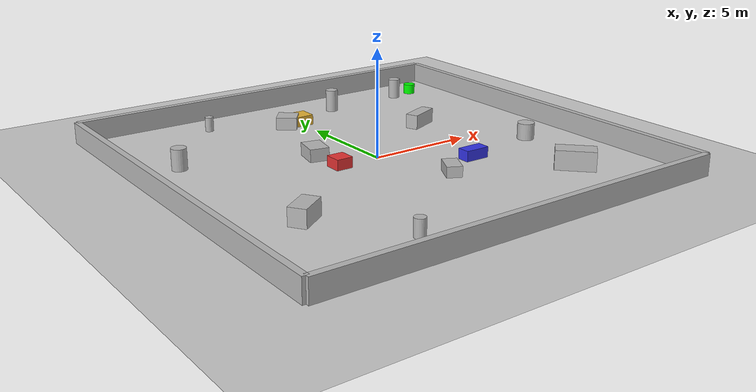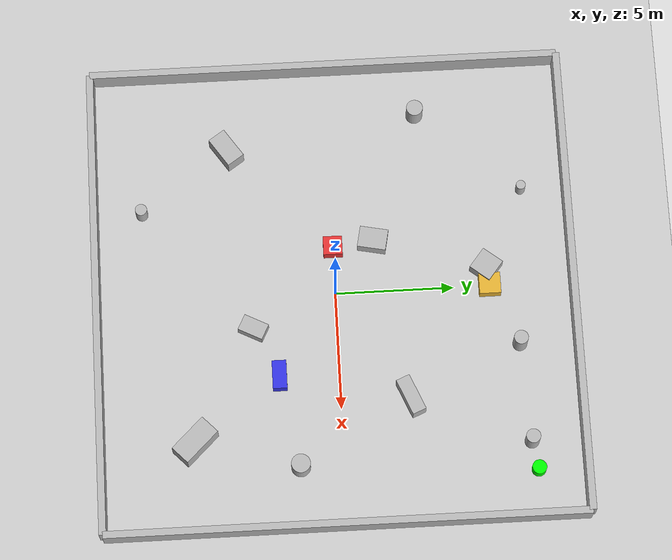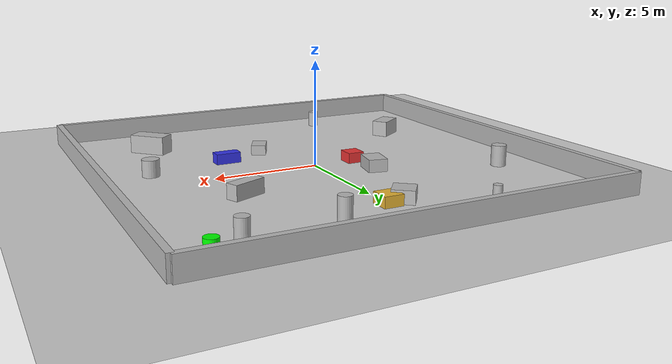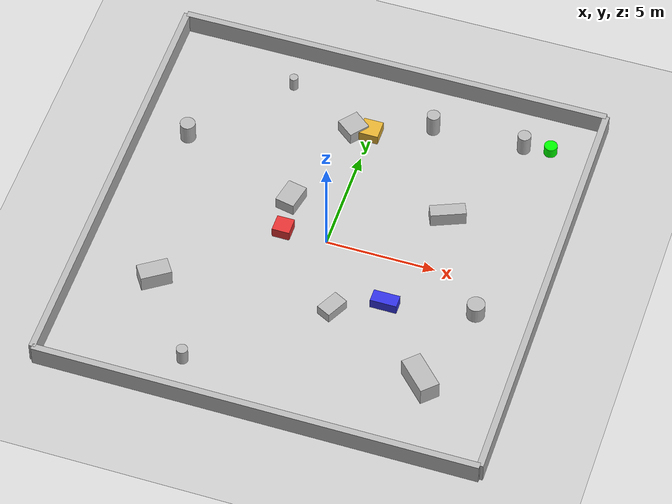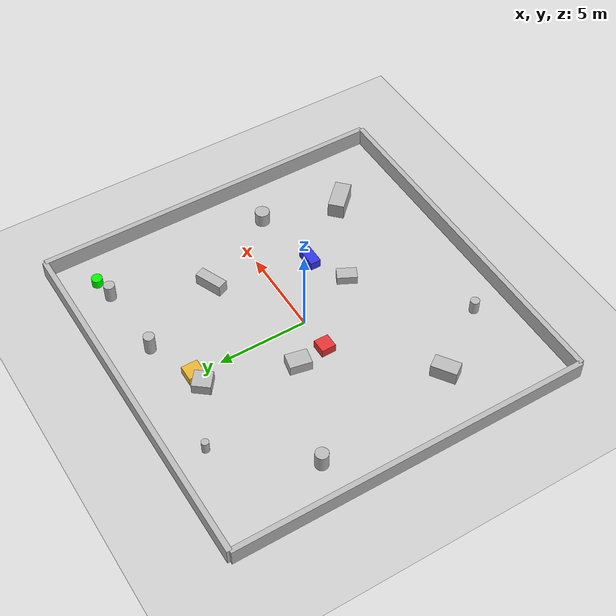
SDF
<sdf version='1.10'>
  <world name='empty'>
    <physics name='1ms' type='ignored'>
      <max_step_size>0.001</max_step_size>
      <real_time_factor>1</real_time_factor>
      <real_time_update_rate>1000</real_time_update_rate>
    </physics>

    <plugin name='gz::sim::systems::Physics' filename='gz-sim-physics-system'/>
    <plugin name='gz::sim::systems::UserCommands' filename='gz-sim-user-commands-system'/>
    <plugin name='gz::sim::systems::SceneBroadcaster' filename='gz-sim-scene-broadcaster-system'/>
    <plugin name='gz::sim::systems::Contact' filename='gz-sim-contact-system'/>
    <plugin name='gz::sim::systems::Sensors' filename='gz-sim-sensors-system'>
      <render_engine>ogre2</render_engine>
    </plugin>

    <gravity>0 0 -9.8</gravity>

    <scene>
      <ambient>0.4 0.4 0.4 1</ambient>
      <background>0.7 0.7 0.7 1</background>
      <shadows>true</shadows>
    </scene>

    <!-- Ground plane -->
    <model name='ground_plane'>
      <static>true</static>
      <pose>0 0 0 0 0 0</pose>
      <link name='link'>
        <collision name='collision'>
          <geometry>
            <plane>
              <normal>0 0 1</normal>
              <size>30 30</size>
            </plane>
          </geometry>
          <surface><friction><ode/></friction></surface>
        </collision>
        <visual name='visual'>
          <geometry>
            <plane>
              <normal>0 0 1</normal>
              <size>30 30</size>
            </plane>
          </geometry>
          <material>
            <ambient>0.8 0.8 0.8 1</ambient>
            <diffuse>0.8 0.8 0.8 1</diffuse>
          </material>
        </visual>
      </link>
    </model>

    <!-- Boundary walls -->
    <model name='wall_north'>
      <static>true</static>
      <pose>0 10 0.5 0 0 0</pose>
      <link name='link'>
        <collision name='col'><geometry><box><size>20 0.3 1.0</size></box></geometry></collision>
        <visual name='vis'><geometry><box><size>20 0.3 1.0</size></box></geometry></visual>
      </link>
    </model>

    <model name='wall_south'>
      <static>true</static>
      <pose>0 -10 0.5 0 0 0</pose>
      <link name='link'>
        <collision name='col'><geometry><box><size>20 0.3 1.0</size></box></geometry></collision>
        <visual name='vis'><geometry><box><size>20 0.3 1.0</size></box></geometry></visual>
      </link>
    </model>

    <model name='wall_west'>
      <static>true</static>
      <pose>-10 0 0.5 0 0 0</pose>
      <link name='link'>
        <collision name='col'><geometry><box><size>0.3 20 1.0</size></box></geometry></collision>
        <visual name='vis'><geometry><box><size>0.3 20 1.0</size></box></geometry></visual>
      </link>
    </model>

    <model name='wall_east'>
      <static>true</static>
      <pose>10 0 0.5 0 0 0</pose>
      <link name='link'>
        <collision name='col'><geometry><box><size>0.3 20 1.0</size></box></geometry></collision>
        <visual name='vis'><geometry><box><size>0.3 20 1.0</size></box></geometry></visual>
      </link>
    </model>

    <!-- Static box obstacles -->
    <model name='box_00'>
      <static>true</static>
      <pose>-6.5 -4.3 0.4 0 0 0.6</pose>
      <link name='link'>
        <collision name='col'><geometry><box><size>1.4 0.8 0.8</size></box></geometry></collision>
        <visual name='vis'><geometry><box><size>1.4 0.8 0.8</size></box></geometry></visual>
      </link>
    </model>

    <model name='box_01'>
      <static>true</static>
      <pose>-2.2 1.7 0.3 0 0 -0.2</pose>
      <link name='link'>
        <collision name='col'><geometry><box><size>0.9 1.2 0.6</size></box></geometry></collision>
        <visual name='vis'><geometry><box><size>0.9 1.2 0.6</size></box></geometry></visual>
      </link>
    </model>

    <model name='box_02'>
      <static>true</static>
      <pose>1.4 -3.5 0.25 0 0 1.1</pose>
      <link name='link'>
        <collision name='col'><geometry><box><size>1.1 0.7 0.5</size></box></geometry></collision>
        <visual name='vis'><geometry><box><size>1.1 0.7 0.5</size></box></geometry></visual>
      </link>
    </model>

    <model name='box_03'>
      <static>true</static>
      <pose>4.7 2.9 0.35 0 0 0.4</pose>
      <link name='link'>
        <collision name='col'><geometry><box><size>1.6 0.6 0.7</size></box></geometry></collision>
        <visual name='vis'><geometry><box><size>1.6 0.6 0.7</size></box></geometry></visual>
      </link>
    </model>

    <model name='box_04'>
      <static>true</static>
      <pose>6.2 -6.1 0.45 0 0 -0.8</pose>
      <link name='link'>
        <collision name='col'><geometry><box><size>1.8 0.9 0.9</size></box></geometry></collision>
        <visual name='vis'><geometry><box><size>1.8 0.9 0.9</size></box></geometry></visual>
      </link>
    </model>

    <model name='box_05'>
      <static>true</static>
      <pose>-0.8 6.4 0.3 0 0 0.9</pose>
      <link name='link'>
        <collision name='col'><geometry><box><size>1.0 1.0 0.6</size></box></geometry></collision>
        <visual name='vis'><geometry><box><size>1.0 1.0 0.6</size></box></geometry></visual>
      </link>
    </model>

    <!-- Static cylindrical obstacles -->
    <model name='cyl_00'>
      <static>true</static>
      <pose>-7.8 3.8 0.5 0 0 0</pose>
      <link name='link'>
        <collision name='col'><geometry><cylinder><radius>0.35</radius><length>1.0</length></cylinder></geometry></collision>
        <visual name='vis'><geometry><cylinder><radius>0.35</radius><length>1.0</length></cylinder></geometry></visual>
      </link>
    </model>

    <model name='cyl_01'>
      <static>true</static>
      <pose>-3.9 -8.0 0.4 0 0 0</pose>
      <link name='link'>
        <collision name='col'><geometry><cylinder><radius>0.25</radius><length>0.8</length></cylinder></geometry></collision>
        <visual name='vis'><geometry><cylinder><radius>0.25</radius><length>0.8</length></cylinder></geometry></visual>
      </link>
    </model>

    <model name='cyl_02'>
      <static>true</static>
      <pose>2.6 7.6 0.55 0 0 0</pose>
      <link name='link'>
        <collision name='col'><geometry><cylinder><radius>0.30</radius><length>1.1</length></cylinder></geometry></collision>
        <visual name='vis'><geometry><cylinder><radius>0.30</radius><length>1.1</length></cylinder></geometry></visual>
      </link>
    </model>

    <model name='cyl_03'>
      <static>true</static>
      <pose>7.4 -1.8 0.4 0 0 0</pose>
      <link name='link'>
        <collision name='col'><geometry><cylinder><radius>0.40</radius><length>0.8</length></cylinder></geometry></collision>
        <visual name='vis'><geometry><cylinder><radius>0.40</radius><length>0.8</length></cylinder></geometry></visual>
      </link>
    </model>

    <model name='cyl_04'>
      <static>true</static>
      <pose>6.8 7.8 0.5 0 0 0</pose>
      <link name='link'>
        <collision name='col'><geometry><cylinder><radius>0.30</radius><length>1.0</length></cylinder></geometry></collision>
        <visual name='vis'><geometry><cylinder><radius>0.30</radius><length>1.0</length></cylinder></geometry></visual>
      </link>
    </model>

    <model name='cyl_05'>
      <static>true</static>
      <pose>-4.2 8.1 0.35 0 0 0</pose>
      <link name='link'>
        <collision name='col'><geometry><cylinder><radius>0.20</radius><length>0.7</length></cylinder></geometry></collision>
        <visual name='vis'><geometry><cylinder><radius>0.20</radius><length>0.7</length></cylinder></geometry></visual>
      </link>
    </model>

    <!-- TARGET (GOAL) MARKER -->
    <model name='goal_marker'>
      <static>true</static>
      <pose>8.0 8.0 0.25 0 0 0</pose>
      <link name='link'>
        <collision name='col'>
          <geometry>
            <cylinder>
              <radius>0.30</radius>
              <length>0.50</length>
            </cylinder>
          </geometry>
        </collision>
        <visual name='vis'>
          <geometry>
            <cylinder>
              <radius>0.30</radius>
              <length>0.50</length>
            </cylinder>
          </geometry>
          <material>
            <ambient>0.0 0.8 0.0 1</ambient>
            <diffuse>0.0 1.0 0.0 1</diffuse>
            <specular>0.1 0.1 0.1 1</specular>
          </material>
        </visual>
      </link>
    </model>

    <!-- DYNAMIC OBSTACLES (MOVING BOXES) -->
    <!-- Dynamic box 1: slides along +X / -X -->
    <model name='dyn_box_01'>
      <static>false</static>
      <pose>-2.0 0.0 0.25 0 0 0</pose>

      <link name='base_link'>
        <collision name='col'><geometry><box><size>0.8 0.8 0.5</size></box></geometry></collision>
        <visual name='vis'>
          <geometry><box><size>0.8 0.8 0.5</size></box></geometry>
          <material>
            <ambient>0.8 0.2 0.2 1</ambient>
            <diffuse>0.9 0.2 0.2 1</diffuse>
          </material>
        </visual>
        <inertial>
          <mass>5.0</mass>
          <inertia>
            <ixx>0.10</ixx><iyy>0.10</iyy><izz>0.10</izz>
            <ixy>0</ixy><ixz>0</ixz><iyz>0</iyz>
          </inertia>
        </inertial>
      </link>

      <!-- ANCHORED prismatic joint to world (no floating slider_link) -->
      <joint name='slider_joint' type='prismatic'>
        <parent>world</parent>
        <child>base_link</child>
        <axis>
          <xyz>1 0 0</xyz>
          <limit>
            <lower>-3.0</lower>
            <upper>3.0</upper>
            <effort>500</effort>
          </limit>
        </axis>
      </joint>

      <plugin name="gz::sim::systems::JointPositionController"
              filename="gz-sim-joint-position-controller-system">
        <joint_name>slider_joint</joint_name>
        <topic>/model/dyn_box_01/joint/slider_joint/cmd_pos</topic>
      </plugin>
    </model>

    <!-- Dynamic box 2: slides along +Y / -Y -->
    <model name='dyn_box_02'>
      <static>false</static>
      <pose>3.5 -2.5 0.25 0 0 0</pose>

      <link name='base_link'>
        <collision name='col'><geometry><box><size>1.2 0.6 0.5</size></box></geometry></collision>
        <visual name='vis'>
          <geometry><box><size>1.2 0.6 0.5</size></box></geometry>
          <material>
            <ambient>0.2 0.2 0.8 1</ambient>
            <diffuse>0.2 0.2 0.9 1</diffuse>
          </material>
        </visual>
        <inertial>
          <mass>6.0</mass>
          <inertia>
            <ixx>0.12</ixx><iyy>0.08</iyy><izz>0.12</izz>
            <ixy>0</ixy><ixz>0</ixz><iyz>0</iyz>
          </inertia>
        </inertial>
      </link>

      <joint name='slider_joint' type='prismatic'>
        <parent>world</parent>
        <child>base_link</child>
        <axis>
          <xyz>0 1 0</xyz>
          <limit>
            <lower>-2.5</lower>
            <upper>2.5</upper>
            <effort>500</effort>
          </limit>
        </axis>
      </joint>

      <plugin name="gz::sim::systems::JointPositionController"
              filename="gz-sim-joint-position-controller-system">
        <joint_name>slider_joint</joint_name>
        <topic>/model/dyn_box_02/joint/slider_joint/cmd_pos</topic>
      </plugin>
    </model>

    <!-- Dynamic box 3: slides along +X / -X in the upper area -->
    <model name='dyn_box_03'>
      <static>false</static>
      <pose>0.0 6.5 0.25 0 0 0</pose>

      <link name='base_link'>
        <collision name='col'><geometry><box><size>0.9 0.9 0.5</size></box></geometry></collision>
        <visual name='vis'>
          <geometry><box><size>0.9 0.9 0.5</size></box></geometry>
          <material>
            <ambient>0.8 0.6 0.2 1</ambient>
            <diffuse>0.9 0.7 0.2 1</diffuse>
          </material>
        </visual>
        <inertial>
          <mass>5.5</mass>
          <inertia>
            <ixx>0.10</ixx><iyy>0.10</iyy><izz>0.10</izz>
            <ixy>0</ixy><ixz>0</ixz><iyz>0</iyz>
          </inertia>
        </inertial>
      </link>

      <joint name='slider_joint' type='prismatic'>
        <parent>world</parent>
        <child>base_link</child>
        <axis>
          <xyz>1 0 0</xyz>
          <limit>
            <lower>-4.0</lower>
            <upper>4.0</upper>
            <effort>500</effort>
          </limit>
        </axis>
      </joint>

      <plugin name="gz::sim::systems::JointPositionController"
              filename="gz-sim-joint-position-controller-system">
        <joint_name>slider_joint</joint_name>
        <topic>/model/dyn_box_03/joint/slider_joint/cmd_pos</topic>
      </plugin>
    </model>

    <!-- Sun light -->
    <light name='sun' type='directional'>
      <pose>0 0 10 0 0 0</pose>
      <cast_shadows>true</cast_shadows>
      <intensity>1</intensity>
      <direction>-0.5 0.1 -0.9</direction>
      <diffuse>0.8 0.8 0.8 1</diffuse>
      <specular>0.2 0.2 0.2 1</specular>
      <attenuation>
        <range>1000</range>
        <linear>0.01</linear>
        <constant>0.9</constant>
        <quadratic>0.001</quadratic>
      </attenuation>
    </light>

  </world>
</sdf>
